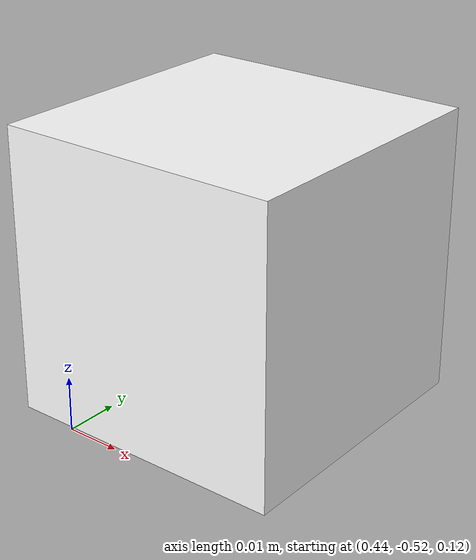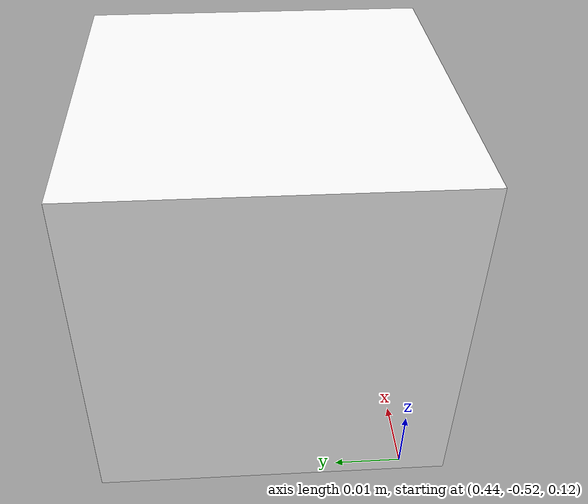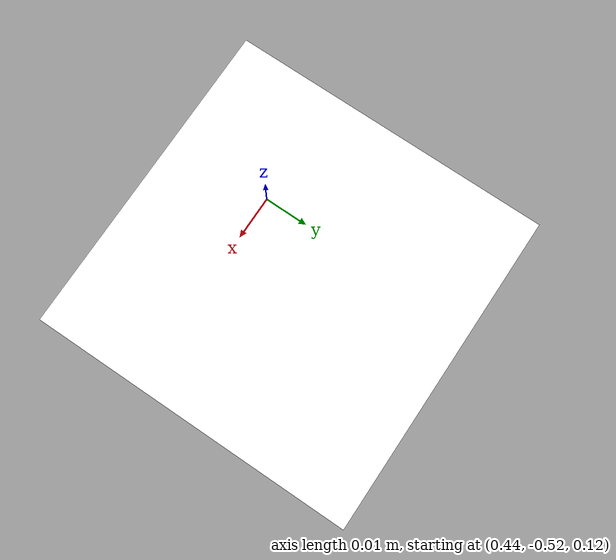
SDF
<?xml version="1.0" ?>
<sdf version="1.8">
  <world name="pick_place_world">

    <include>
      <uri>https://fuel.ignitionrobotics.org/1.0/OpenRobotics/models/Ground Plane</uri>
    </include>

    <!-- 固定方向光替换 Sun（避免动态曝光） -->
    <light name="sun" type="directional">
      <pose>0 0 10 0 0 0</pose>
      <diffuse>0.8 0.8 0.8 1</diffuse>
      <specular>0.1 0.1 0.1 1</specular>
      <direction>0 0 -1</direction>
      <cast_shadows>false</cast_shadows>
    </light>

    <!-- 相机：俯视工作区 -->
    <model name="static_camera">
      <static>true</static>
      <pose>0.46 -0.5 0.5 0 1.4 0</pose>
      <link name="link">
        <visual name="visual">
          <geometry>
            <box>
              <size>0.01 0.01 0.01</size>
            </box>
          </geometry>
          <transparency>1.0</transparency>
        </visual>
        <sensor name="camera" type="camera">
          <topic>/camera/image_raw</topic>
          <camera>
            <horizontal_fov>1.047</horizontal_fov>
            <image>
              <width>640</width>
              <height>480</height>
            </image>
            <clip>
              <near>0.1</near>
              <far>100</far>
            </clip>
          </camera>
          <always_on>1</always_on>
          <update_rate>30</update_rate>
          <visualize>true</visualize>
        </sensor>
      </link>
    </model>

    <!-- 工件：可抓取方块（ArUco 标记顶面，dynamic 物理模型） -->
    <model name="workpiece">
      <pose>0.46 -0.5 0.15 0 0 0</pose>
      <link name="link">
        <inertial>
          <mass>0.1</mass>
          <inertia>
            <ixx>0.000042</ixx>
            <ixy>0</ixy>
            <ixz>0</ixz>
            <iyy>0.000042</iyy>
            <iyz>0</iyz>
            <izz>0.000042</izz>
          </inertia>
        </inertial>
        <collision name="collision">
          <geometry>
            <box>
              <size>0.05 0.05 0.05</size>
            </box>
          </geometry>
          <surface>
            <friction>
              <ode>
                <mu>0.6</mu>
                <mu2>0.6</mu2>
              </ode>
            </friction>
          </surface>
        </collision>
        <visual name="visual">
          <geometry>
            <box>
              <size>0.05 0.05 0.05</size>
            </box>
          </geometry>
          <material>
            <ambient>1 1 1 1</ambient>
            <diffuse>1 1 1 1</diffuse>
            <pbr>
              <specular>
                <albedo_map>aruco_0.png</albedo_map>
              </specular>
            </pbr>
          </material>
        </visual>
      </link>
    </model>

  </world>
</sdf>
